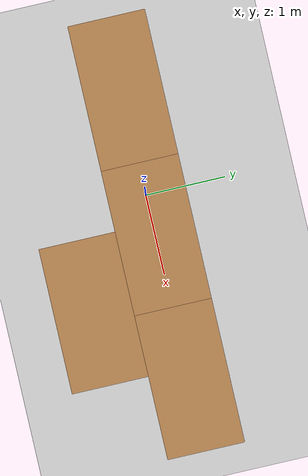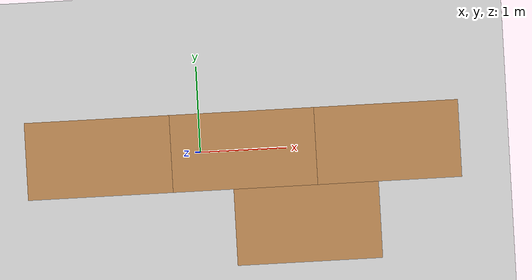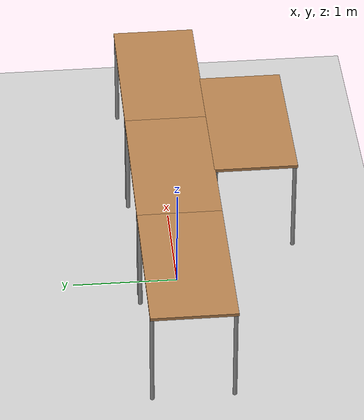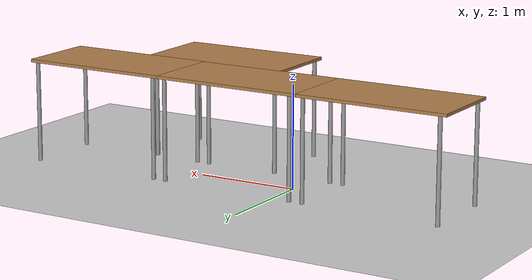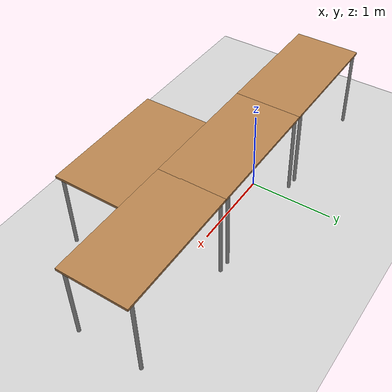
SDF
<sdf version="1.6">
 <world name="default">
  <light name="sun" type="directional">
   <pose>0 0 10 0 -0 0</pose>
   <diffuse>0.8 0.8 0.8 1</diffuse>
   <specular>0.1 0.1 0.1 1</specular>
   <attenuation>
    <range>1000</range>
    <constant>0.9</constant>
    <linear>0.01</linear>
    <quadratic>0.001</quadratic>
   </attenuation>
   <direction>-0.5 0.5 -1</direction>
  </light>
  <model name="ground_plane">
   <static>1</static>
   <link name="link">
    <collision name="collision">
     <geometry><plane><normal>0 0 1</normal><size>100 100</size></plane></geometry>
     <surface><friction><ode><mu>100</mu><mu2>50</mu2></ode></friction></surface>
    </collision>
    <visual name="visual">
     <cast_shadows>0</cast_shadows>
     <geometry><plane><normal>0 0 1</normal><size>100 100</size></plane></geometry>
     <material>
      <script><uri>file://media/materials/scripts/gazebo.material</uri><name>Gazebo/Grey</name></script>
     </material>
    </visual>
   </link>
  </model>
  <physics name="default_physics" default="0" type="ode">
   <max_step_size>0.01</max_step_size>
   <real_time_factor>1</real_time_factor>
   <real_time_update_rate>100</real_time_update_rate>
  </physics>
  <scene><ambient>0.4 0.4 0.4 1</ambient><background>0.7 0.7 0.7 1</background><shadows>1</shadows></scene>
  <model name="table">
   <static>1</static>
   <link name="link">
    <collision name="surface">
     <pose>0 0 1 0 -0 0</pose>
     <geometry><box><size>1.5 0.8 0.03</size></box></geometry>
    </collision>
    <visual name="visual1">
     <pose>0 0 1 0 -0 0</pose>
     <geometry><box><size>1.5 0.8 0.03</size></box></geometry>
     <material>
      <script><uri>file://media/materials/scripts/gazebo.material</uri><name>Gazebo/Wood</name></script>
     </material>
    </visual>
    <collision name="front_left_leg">
     <pose>0.68 0.38 0.5 0 -0 0</pose>
     <geometry><cylinder><radius>0.02</radius><length>1</length></cylinder></geometry>
    </collision>
    <visual name="front_left_leg">
     <pose>0.68 0.38 0.5 0 -0 0</pose>
     <geometry><cylinder><radius>0.02</radius><length>1</length></cylinder></geometry>
     <material>
      <script><uri>file://media/materials/scripts/gazebo.material</uri><name>Gazebo/Grey</name></script>
     </material>
    </visual>
    <collision name="front_right_leg">
     <pose>0.68 -0.38 0.5 0 -0 0</pose>
     <geometry><cylinder><radius>0.02</radius><length>1</length></cylinder></geometry>
    </collision>
    <visual name="front_right_leg">
     <pose>0.68 -0.38 0.5 0 -0 0</pose>
     <geometry><cylinder><radius>0.02</radius><length>1</length></cylinder></geometry>
     <material>
      <script><uri>file://media/materials/scripts/gazebo.material</uri><name>Gazebo/Grey</name></script>
     </material>
    </visual>
    <collision name="back_right_leg">
     <pose>-0.68 -0.38 0.5 0 -0 0</pose>
     <geometry><cylinder><radius>0.02</radius><length>1</length></cylinder></geometry>
    </collision>
    <visual name="back_right_leg">
     <pose>-0.68 -0.38 0.5 0 -0 0</pose>
     <geometry><cylinder><radius>0.02</radius><length>1</length></cylinder></geometry>
     <material>
      <script><uri>file://media/materials/scripts/gazebo.material</uri><name>Gazebo/Grey</name></script>
     </material>
    </visual>
    <collision name="back_left_leg">
     <pose>-0.68 0.38 0.5 0 -0 0</pose>
     <geometry><cylinder><radius>0.02</radius><length>1</length></cylinder></geometry>
    </collision>
    <visual name="back_left_leg">
     <pose>-0.68 0.38 0.5 0 -0 0</pose>
     <geometry><cylinder><radius>0.02</radius><length>1</length></cylinder></geometry>
     <material>
      <script><uri>file://media/materials/scripts/gazebo.material</uri><name>Gazebo/Grey</name></script>
     </material>
    </visual>
    <velocity_decay><linear>0</linear><angular>0</angular></velocity_decay>
   </link>
   <pose>-1 0 0 0 -0 0</pose>
  </model>
  <model name="table_0">
   <static>1</static>
   <link name="link">
    <collision name="surface">
     <pose>0 0 1 0 -0 0</pose>
     <geometry><box><size>1.5 0.8 0.03</size></box></geometry>
    </collision>
    <visual name="visual1">
     <pose>0 0 1 0 -0 0</pose>
     <geometry><box><size>1.5 0.8 0.03</size></box></geometry>
     <material>
      <script><uri>file://media/materials/scripts/gazebo.material</uri><name>Gazebo/Wood</name></script>
     </material>
    </visual>
    <collision name="front_left_leg">
     <pose>0.68 0.38 0.5 0 -0 0</pose>
     <geometry><cylinder><radius>0.02</radius><length>1</length></cylinder></geometry>
    </collision>
    <visual name="front_left_leg">
     <pose>0.68 0.38 0.5 0 -0 0</pose>
     <geometry><cylinder><radius>0.02</radius><length>1</length></cylinder></geometry>
     <material>
      <script><uri>file://media/materials/scripts/gazebo.material</uri><name>Gazebo/Grey</name></script>
     </material>
    </visual>
    <collision name="front_right_leg">
     <pose>0.68 -0.38 0.5 0 -0 0</pose>
     <geometry><cylinder><radius>0.02</radius><length>1</length></cylinder></geometry>
    </collision>
    <visual name="front_right_leg">
     <pose>0.68 -0.38 0.5 0 -0 0</pose>
     <geometry><cylinder><radius>0.02</radius><length>1</length></cylinder></geometry>
     <material>
      <script><uri>file://media/materials/scripts/gazebo.material</uri><name>Gazebo/Grey</name></script>
     </material>
    </visual>
    <collision name="back_right_leg">
     <pose>-0.68 -0.38 0.5 0 -0 0</pose>
     <geometry><cylinder><radius>0.02</radius><length>1</length></cylinder></geometry>
    </collision>
    <visual name="back_right_leg">
     <pose>-0.68 -0.38 0.5 0 -0 0</pose>
     <geometry><cylinder><radius>0.02</radius><length>1</length></cylinder></geometry>
     <material>
      <script><uri>file://media/materials/scripts/gazebo.material</uri><name>Gazebo/Grey</name></script>
     </material>
    </visual>
    <collision name="back_left_leg">
     <pose>-0.68 0.38 0.5 0 -0 0</pose>
     <geometry><cylinder><radius>0.02</radius><length>1</length></cylinder></geometry>
    </collision>
    <visual name="back_left_leg">
     <pose>-0.68 0.38 0.5 0 -0 0</pose>
     <geometry><cylinder><radius>0.02</radius><length>1</length></cylinder></geometry>
     <material>
      <script><uri>file://media/materials/scripts/gazebo.material</uri><name>Gazebo/Grey</name></script>
     </material>
    </visual>
    <velocity_decay><linear>0</linear><angular>0</angular></velocity_decay>
   </link>
   <pose>0.497781 0 0 0 -0 0</pose>
  </model>
  <model name="table_2">
   <static>1</static>
   <link name="link">
    <collision name="surface">
     <pose>0 0 1 0 -0 0</pose>
     <geometry><box><size>1.5 0.8 0.03</size></box></geometry>
    </collision>
    <visual name="visual1">
     <pose>0 0 1 0 -0 0</pose>
     <geometry><box><size>1.5 0.8 0.03</size></box></geometry>
     <material>
      <script><uri>file://media/materials/scripts/gazebo.material</uri><name>Gazebo/Wood</name></script>
     </material>
    </visual>
    <collision name="front_left_leg">
     <pose>0.68 0.38 0.5 0 -0 0</pose>
     <geometry><cylinder><radius>0.02</radius><length>1</length></cylinder></geometry>
    </collision>
    <visual name="front_left_leg">
     <pose>0.68 0.38 0.5 0 -0 0</pose>
     <geometry><cylinder><radius>0.02</radius><length>1</length></cylinder></geometry>
     <material>
      <script><uri>file://media/materials/scripts/gazebo.material</uri><name>Gazebo/Grey</name></script>
     </material>
    </visual>
    <collision name="front_right_leg">
     <pose>0.68 -0.38 0.5 0 -0 0</pose>
     <geometry><cylinder><radius>0.02</radius><length>1</length></cylinder></geometry>
    </collision>
    <visual name="front_right_leg">
     <pose>0.68 -0.38 0.5 0 -0 0</pose>
     <geometry><cylinder><radius>0.02</radius><length>1</length></cylinder></geometry>
     <material>
      <script><uri>file://media/materials/scripts/gazebo.material</uri><name>Gazebo/Grey</name></script>
     </material>
    </visual>
    <collision name="back_right_leg">
     <pose>-0.68 -0.38 0.5 0 -0 0</pose>
     <geometry><cylinder><radius>0.02</radius><length>1</length></cylinder></geometry>
    </collision>
    <visual name="back_right_leg">
     <pose>-0.68 -0.38 0.5 0 -0 0</pose>
     <geometry><cylinder><radius>0.02</radius><length>1</length></cylinder></geometry>
     <material>
      <script><uri>file://media/materials/scripts/gazebo.material</uri><name>Gazebo/Grey</name></script>
     </material>
    </visual>
    <collision name="back_left_leg">
     <pose>-0.68 0.38 0.5 0 -0 0</pose>
     <geometry><cylinder><radius>0.02</radius><length>1</length></cylinder></geometry>
    </collision>
    <visual name="back_left_leg">
     <pose>-0.68 0.38 0.5 0 -0 0</pose>
     <geometry><cylinder><radius>0.02</radius><length>1</length></cylinder></geometry>
     <material>
      <script><uri>file://media/materials/scripts/gazebo.material</uri><name>Gazebo/Grey</name></script>
     </material>
    </visual>
    <velocity_decay><linear>0</linear><angular>0</angular></velocity_decay>
   </link>
   <pose>1.99 0 0 0 -0 0</pose>
  </model>
  <model name="table_3">
   <static>1</static>
   <link name="link">
    <collision name="surface">
     <pose>0 0 1 0 -0 0</pose>
     <geometry><box><size>1.5 0.8 0.03</size></box></geometry>
    </collision>
    <visual name="visual1">
     <pose>0 0 1 0 -0 0</pose>
     <geometry><box><size>1.5 0.8 0.03</size></box></geometry>
     <material>
      <script><uri>file://media/materials/scripts/gazebo.material</uri><name>Gazebo/Wood</name></script>
     </material>
    </visual>
    <collision name="front_left_leg">
     <pose>0.68 0.38 0.5 0 -0 0</pose>
     <geometry><cylinder><radius>0.02</radius><length>1</length></cylinder></geometry>
    </collision>
    <visual name="front_left_leg">
     <pose>0.68 0.38 0.5 0 -0 0</pose>
     <geometry><cylinder><radius>0.02</radius><length>1</length></cylinder></geometry>
     <material>
      <script><uri>file://media/materials/scripts/gazebo.material</uri><name>Gazebo/Grey</name></script>
     </material>
    </visual>
    <collision name="front_right_leg">
     <pose>0.68 -0.38 0.5 0 -0 0</pose>
     <geometry><cylinder><radius>0.02</radius><length>1</length></cylinder></geometry>
    </collision>
    <visual name="front_right_leg">
     <pose>0.68 -0.38 0.5 0 -0 0</pose>
     <geometry><cylinder><radius>0.02</radius><length>1</length></cylinder></geometry>
     <material>
      <script><uri>file://media/materials/scripts/gazebo.material</uri><name>Gazebo/Grey</name></script>
     </material>
    </visual>
    <collision name="back_right_leg">
     <pose>-0.68 -0.38 0.5 0 -0 0</pose>
     <geometry><cylinder><radius>0.02</radius><length>1</length></cylinder></geometry>
    </collision>
    <visual name="back_right_leg">
     <pose>-0.68 -0.38 0.5 0 -0 0</pose>
     <geometry><cylinder><radius>0.02</radius><length>1</length></cylinder></geometry>
     <material>
      <script><uri>file://media/materials/scripts/gazebo.material</uri><name>Gazebo/Grey</name></script>
     </material>
    </visual>
    <collision name="back_left_leg">
     <pose>-0.68 0.38 0.5 0 -0 0</pose>
     <geometry><cylinder><radius>0.02</radius><length>1</length></cylinder></geometry>
    </collision>
    <visual name="back_left_leg">
     <pose>-0.68 0.38 0.5 0 -0 0</pose>
     <geometry><cylinder><radius>0.02</radius><length>1</length></cylinder></geometry>
     <material>
      <script><uri>file://media/materials/scripts/gazebo.material</uri><name>Gazebo/Grey</name></script>
     </material>
    </visual>
    <velocity_decay><linear>0</linear><angular>0</angular></velocity_decay>
   </link>
   <pose>1.1267 -0.790922 0 0 -0 0</pose>
  </model>
  <gravity>0 0 -9.8</gravity>
  <magnetic_field>6e-06 2.3e-05 -4.2e-05</magnetic_field>
  <atmosphere type="adiabatic"/>
  <spherical_coordinates>
   <surface_model>EARTH_WGS84</surface_model>
   <latitude_deg>0</latitude_deg>
   <longitude_deg>0</longitude_deg>
   <elevation>0</elevation>
   <heading_deg>0</heading_deg>
  </spherical_coordinates>
 </world>
</sdf>
